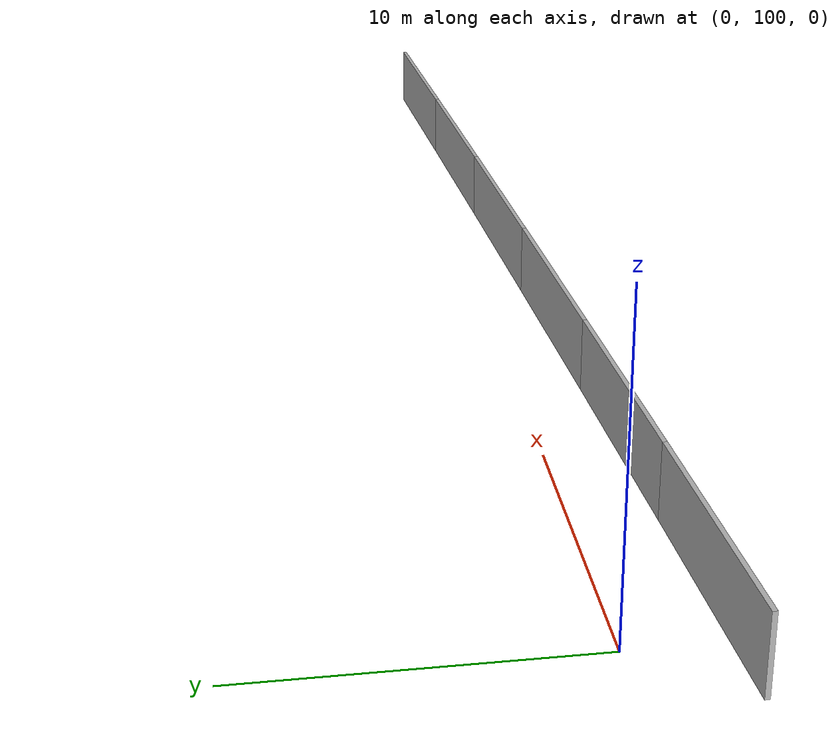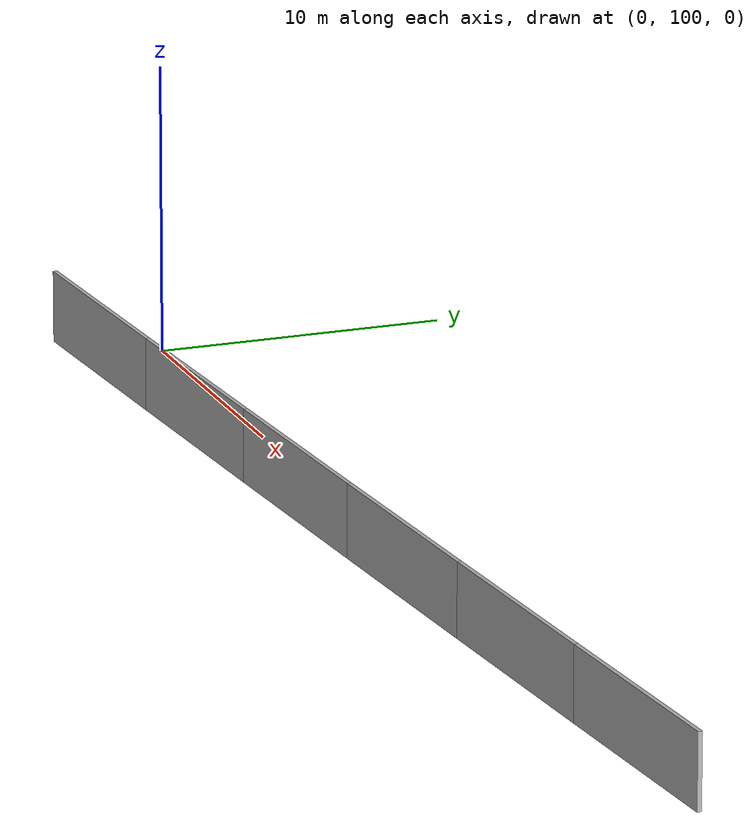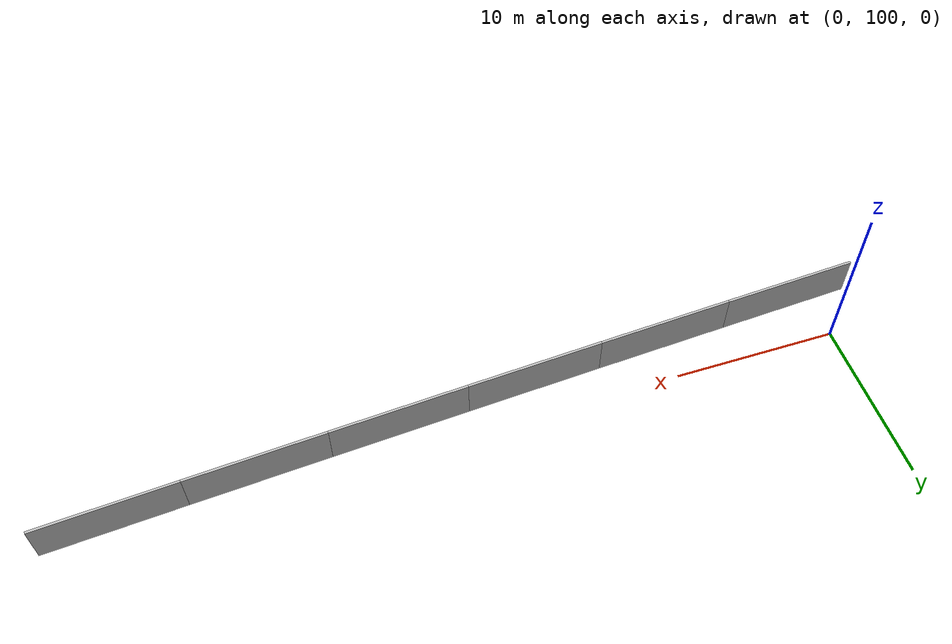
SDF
<?xml version="1.0" ?>
<sdf version="1.6">
  <model name="sps_2400">
    <pose frame="">0 0 0 0 -0 0</pose>
    <static>1</static>
    <self_collide>0</self_collide>
    <allow_auto_disable>0</allow_auto_disable>
    <link name="Wall9081">
      <kinematic>0</kinematic>
      <gravity>1</gravity>
      <self_collide>0</self_collide>
      <collision name="collision">
        <geometry>
          <box>
            <size>8.26138 0.15 2.5</size>
          </box>
        </geometry>
        <pose frame="">0 0 0 0 -0 0</pose>
      </collision>
      <visual name="visual">
        <geometry>
          <box>
            <size>8.26138 0.15 2.5</size>
          </box>
        </geometry>
        <pose frame="">0 0 0 0 -0 0</pose>
        <cast_shadows>1</cast_shadows>
        <transparency>0.0</transparency>
      </visual>
      <pose frame="">1.81695 97.189 1.25 0 -0 0.0556383</pose>
    </link>
    <link name="Wall9082">
      <kinematic>0</kinematic>
      <gravity>1</gravity>
      <self_collide>0</self_collide>
      <collision name="collision">
        <geometry>
          <box>
            <size>8.26169 0.15 2.5</size>
          </box>
        </geometry>
        <pose frame="">0 0 0 0 -0 0</pose>
      </collision>
      <visual name="visual">
        <geometry>
          <box>
            <size>8.26169 0.15 2.5</size>
          </box>
        </geometry>
        <pose frame="">0 0 0 0 -0 0</pose>
        <cast_shadows>1</cast_shadows>
        <transparency>0.0</transparency>
      </visual>
      <pose frame="">10.0651 97.6581 1.25 0 -0 0.0579819</pose>
    </link>
    <link name="Wall9083">
      <kinematic>0</kinematic>
      <gravity>1</gravity>
      <self_collide>0</self_collide>
      <collision name="collision">
        <geometry>
          <box>
            <size>8.26164 0.15 2.5</size>
          </box>
        </geometry>
        <pose frame="">0 0 0 0 -0 0</pose>
      </collision>
      <visual name="visual">
        <geometry>
          <box>
            <size>8.26164 0.15 2.5</size>
          </box>
        </geometry>
        <pose frame="">0 0 0 0 -0 0</pose>
        <cast_shadows>1</cast_shadows>
        <transparency>0.0</transparency>
      </visual>
      <pose frame="">18.3123 98.1468 1.25 0 -0 0.0603874</pose>
    </link>
    <link name="Wall9084">
      <kinematic>0</kinematic>
      <gravity>1</gravity>
      <self_collide>0</self_collide>
      <collision name="collision">
        <geometry>
          <box>
            <size>8.26167 0.15 2.5</size>
          </box>
        </geometry>
        <pose frame="">0 0 0 0 -0 0</pose>
      </collision>
      <visual name="visual">
        <geometry>
          <box>
            <size>8.26167 0.15 2.5</size>
          </box>
        </geometry>
        <pose frame="">0 0 0 0 -0 0</pose>
        <cast_shadows>1</cast_shadows>
        <transparency>0.0</transparency>
      </visual>
      <pose frame="">26.5583 98.655 1.25 0 -0 0.0627188</pose>
    </link>
    <link name="Wall9085">
      <kinematic>0</kinematic>
      <gravity>1</gravity>
      <self_collide>0</self_collide>
      <collision name="collision">
        <geometry>
          <box>
            <size>8.26171 0.15 2.5</size>
          </box>
        </geometry>
        <pose frame="">0 0 0 0 -0 0</pose>
      </collision>
      <visual name="visual">
        <geometry>
          <box>
            <size>8.26171 0.15 2.5</size>
          </box>
        </geometry>
        <pose frame="">0 0 0 0 -0 0</pose>
        <cast_shadows>1</cast_shadows>
        <transparency>0.0</transparency>
      </visual>
      <pose frame="">34.8032 99.1827 1.25 0 -0 0.065117</pose>
    </link>
    <link name="Wall9086">
      <kinematic>0</kinematic>
      <gravity>1</gravity>
      <self_collide>0</self_collide>
      <collision name="collision">
        <geometry>
          <box>
            <size>8.26158 0.15 2.5</size>
          </box>
        </geometry>
        <pose frame="">0 0 0 0 -0 0</pose>
      </collision>
      <visual name="visual">
        <geometry>
          <box>
            <size>8.26158 0.15 2.5</size>
          </box>
        </geometry>
        <pose frame="">0 0 0 0 -0 0</pose>
        <cast_shadows>1</cast_shadows>
        <transparency>0.0</transparency>
      </visual>
      <pose frame="">43.0467 99.7299 1.25 0 -0 0.0674503</pose>
    </link>
  </model>
</sdf>
